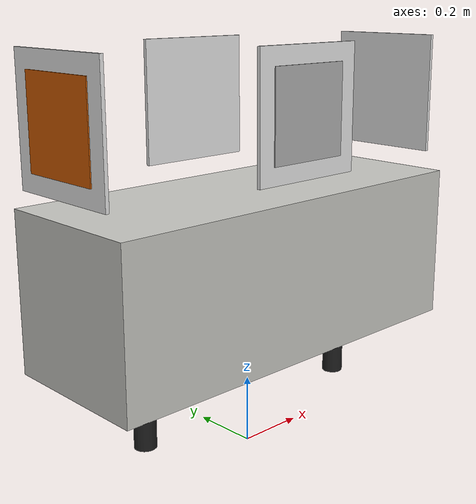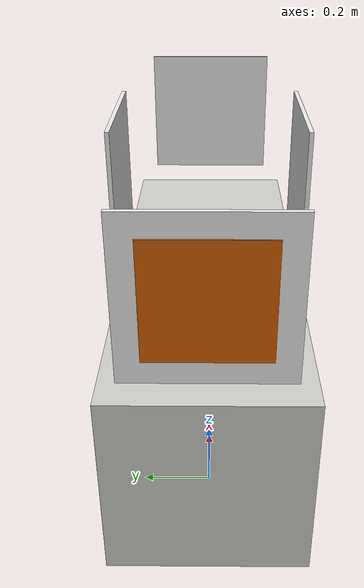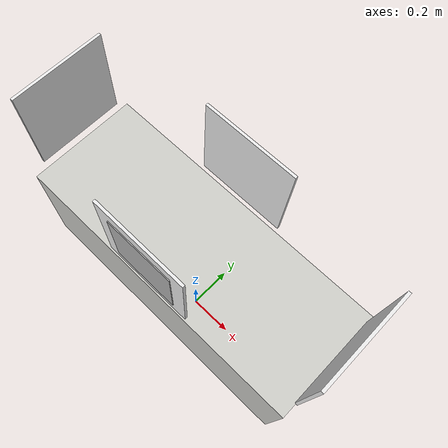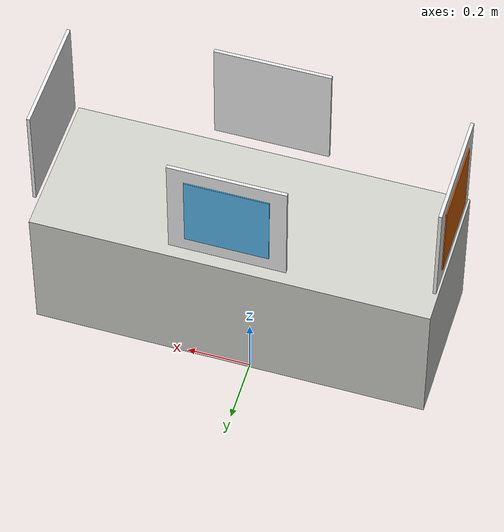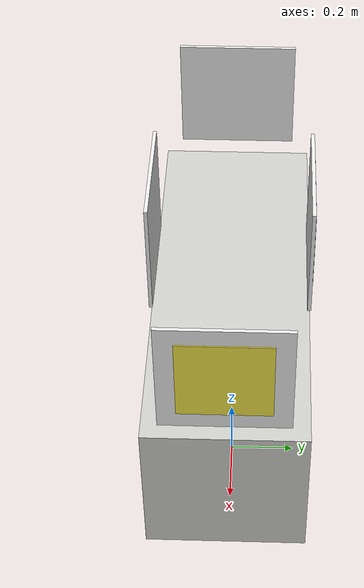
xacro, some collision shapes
<?xml version="1.0" ?>
<robot name="$(arg robotName)" xmlns:xacro="http://ros.org/wiki/xacro">

<!-- #### constants #### -->
<xacro:property name="deg_to_rad" value="0.017453"/>
<xacro:property name="PI" value="3.14"/>

<!-- #### body property #### -->
<xacro:property name="body_length" value="1.2"/>
<xacro:property name="body_width" value=".45"/>
<xacro:property name="body_height" value=".45"/>

<!-- ####  leg property #### -->
<xacro:property name="leg_radius" value="0.025"/>
<xacro:property name="leg_length" value="0.32"/>
<xacro:property name="leg_mass" value="2.5"/>

<!-- ####  rod property #### -->
<xacro:property name="rod_radius" value="0.031"/>
<xacro:property name="rod_length" value="0.3596"/>
<xacro:property name="rod_mass" value="1.0"/>

<!-- ####  Aruco property #### -->
<xacro:property name="aruco_width" value="0.25"/>
<xacro:property name="aruco_length" value="0.25"/>
<xacro:property name="aruco_height" value="0.01"/>
<xacro:property name="aruco_z" value="1."/>
<xacro:property name="aruco_mass" value="0.1"/>
<xacro:property name="edge_width" value="0.1"/>

<!-- begin           MACRO               begin -->

<xacro:macro name="cylinder_inertia" params ="m r h">
    <inertial>
        <mass value="${m}"/>
        <inertia ixx="${m*(3*r*r+h*h)/12}" ixy="0.0" ixz="0.0"
                 iyy="${m*(3*r*r+h*h)/12}" iyz= "0.0"
                 izz="${m*r*r/2}"/>
     </inertial>
 </xacro:macro>

<xacro:macro name="cuboid_inertia" params ="m w l h">
    <inertial>
        <mass value="${m}"/>
        <inertia ixx="${m*(w*w+h*h)/12}" ixy="0.0" ixz="0.0"
                 iyy="${m*(l*l+h*h)/12}" iyz= "0.0"
                 izz="${m*(w*w+l*l)/12}"/>
     </inertial>
 </xacro:macro>

<!-- #####  leg macro  ##### -->
<xacro:macro name="leg" params= "prefix suffix X1 Y1">

  <joint name="${prefix}_${suffix}_leg_joint" type="fixed">
    <parent link= "body"/>
    <child link= "${prefix}_${suffix}_leg"/>
    <origin xyz= "${(body_length/2)*X1} ${(body_width/2)*Y1}  ${leg_length/2}" rpy="0 0 0"/>
    <dynamics damping="0.0" friction="0.0"/>
  </joint>

  <link name= "${prefix}_${suffix}_leg">

    <collision>
      <origin rpy= "0 0 0" xyz= "0 0 0"/>
      <geometry>
        <cylinder length="${leg_length}" radius= "${leg_radius}"/>
      </geometry>
    </collision>
    <xacro:cylinder_inertia m="${leg_mass}" r="${leg_radius}" h="${leg_length}"/>
  </link>

  <gazebo reference ="${prefix}_${suffix}_leg">
    <mu1 value=".005"/>
    <mu2 value=".005"/>
    <kp value="10000000.0"/>
    <kd value= "10.0"/>
    <maxVel>0.</maxVel>
    <minDepth>0.001</minDepth>
  </gazebo>

</xacro:macro>

<xacro:macro name="ball_leg" params= "prefix suffix X1 Y1">

  <joint name="${prefix}_${suffix}_ball_leg_joint" type="fixed">
    <parent link= "body"/>
    <child link= "${prefix}_${suffix}_leg"/>
    <origin xyz= "${(body_length/2)*X1} ${(body_width/2)*Y1}  ${leg_radius}" rpy="0 0 0"/>
    <dynamics damping="0.0" friction="0.0"/>
  </joint>

  <link name= "${prefix}_${suffix}_leg">
    <collision>
      <origin rpy= "0 0 0" xyz= "0 0 0"/>
      <geometry>
        <sphere radius= "${leg_radius}"/>
      </geometry>
    </collision>
    <xacro:cylinder_inertia m="${leg_mass}" r="${leg_radius}" h="${leg_length}"/>
  </link>

  <gazebo reference ="${prefix}_${suffix}_ball_leg">
    <mu1 value=".0002"/>
    <mu2 value=".0002"/>
    <kp value="10000000.0"/>
    <kd value= "10.0"/>
    <maxVel>3</maxVel>
    <minDepth>0.001</minDepth>
  </gazebo>

</xacro:macro>

<!-- #####  Aruco macro  ##### -->
    <!-- Aruco facing four directions-->
<xacro:macro name="aruco" params= "prefix X1 Y1 Yaw aruco_id">
  <joint name="${prefix}_joint" type="fixed">
    <parent link= "body"/>
    <child link= "${prefix}_aruco"/>
    <origin xyz= "${(body_length/2)*X1} ${(body_width/2)*Y1} ${aruco_z}" rpy="${PI/2} 0 ${Yaw*PI/2}"/>
    <dynamics damping="0.0" friction="0.0"/>
  </joint>

  <link name= "${prefix}_aruco">
    <visual>
      <origin rpy= "0 0 0" xyz= "0 0 0"/>
      <geometry>
          <box size="${aruco_length} ${aruco_width} ${aruco_height}"/>
      </geometry>
    </visual>
    <collision>
      <origin rpy= "0 0 0" xyz= "0 0 0"/>
      <geometry>
          <box size="${aruco_length} ${aruco_width} ${aruco_height}"/>
      </geometry>
    </collision>
    <xacro:cuboid_inertia m="${aruco_mass}" w="${aruco_width}" l="${aruco_length}" h="${aruco_height}"/>

  </link>

  <gazebo reference="${prefix}_aruco">
      <material>SOLab/aruco${aruco_id}</material>
  </gazebo>

    <!-- Back Board for white edges -->
  <joint name="${prefix}_whiteboarder_joint" type="fixed">
    <parent link= "body"/>
    <child link= "${prefix}_aruco_whiteboarder"/>
    <origin xyz= "${(body_length/2-aruco_height*1/3)*X1} ${(body_width/2-aruco_height*1/3)*Y1} ${aruco_z}" rpy="${PI/2} 0 ${Yaw*PI/2}"/>
    <dynamics damping="0.0" friction="0.0"/>
  </joint>

  <link name= "${prefix}_aruco_whiteboarder">
    <visual>
      <origin rpy= "0 0 0" xyz= "0 0 0"/>
      <geometry>
          <box size="${aruco_length+edge_width} ${aruco_width+edge_width} ${aruco_height}"/>
      </geometry>
    </visual>
    <collision>
      <origin rpy= "0 0 0" xyz= "0 0 0"/>
      <geometry>
          <box size="${aruco_length+edge_width} ${aruco_width+edge_width} ${aruco_height}"/>
      </geometry>
    </collision>
    <xacro:cuboid_inertia m="${aruco_mass}" w="${aruco_width+edge_width}" l="${aruco_length+edge_width}" h="${aruco_height}"/>
  </link>
  <gazebo reference="${prefix}_aruco_whiteboarder">
      <material>SOLab/WhiteGlow</material>
  </gazebo>

</xacro:macro>

<!-- end           MACRO               end -->

  <!-- body-->
  <link name="body">
    <visual>
      <origin rpy="0 0 0" xyz="0 0 0"/>
      <geometry>
          <mesh filename="package://amr_description/meshes/shelft/only_shelft_XL.stl" scale="0.01 0.01 0.01"/>
      </geometry>
    </visual>

    <collision>
       <origin rpy="0 0 0" xyz="0 0 ${leg_length + body_height/2}"/>
       <geometry>
        <box size="${body_length} ${body_width} ${body_height}"/>
       </geometry>
     </collision>
     <inertial>
         <mass value="1.0"/>
              <inertia ixx="1.3542" ixy="0.0"
                       iyy="1.3542" iyz="0.0"
                       izz="1.3542" ixz="0.0"/>
    </inertial>
   </link>

  <gazebo reference="body">
      <material>Gazebo/CeilingTiled</material>
  </gazebo>

<!-- #### 4 legs #### -->
  <xacro:ball_leg prefix="right" suffix="front" X1="1" Y1="-1"/>
  <xacro:ball_leg prefix="right" suffix="back" X1="-1" Y1="-1"/>
  <xacro:ball_leg prefix="left" suffix="front" X1="1" Y1="1"/>
  <xacro:ball_leg prefix="left" suffix="back" X1="-1" Y1="1"/>

<!-- #### B bottom 1 #### -->
  <joint name="B_bot_1_joint" type="fixed">
    <parent link="body"/>
    <child link="B_bot_1" />
    <origin xyz="${body_length/2 - 0.22} 0 ${leg_length-0.025} " rpy="0 0 0"/>
  </joint>

  <link name="B_bot_1">
    <visual>
      <origin xyz="0.0 0 0.0" rpy="${PI} 0 ${PI/2}"/>
      <geometry>
        <cylinder length="${rod_length}" radius= "${rod_radius}"/>
      </geometry>
      <material name="light_black"/>
    </visual>

    <collision>
      <max_contacts>1</max_contacts>
      <origin xyz="0.0 0 0.0" rpy="${PI} 0 ${PI/2}"/>
      <geometry>
        <cylinder length="${rod_length}" radius= "${rod_radius}"/>
      </geometry>
    </collision>
    <xacro:cylinder_inertia m="${rod_mass}" r="${rod_radius}" h="${rod_length}"/>
  </link>

<!-- #### B bottom 2 #### -->
  <joint name="B_bot_2_joint" type="fixed">
    <parent link="body"/>
    <child link="B_bot_2" />
    <origin xyz="${-body_length/2 + 0.22} 0 ${leg_length -0.025} " rpy="0 0 0"/>
  </joint>

  <link name="B_bot_2">
    <visual>
      <origin xyz="0.0 0 0.0" rpy="${PI} 0 ${PI/2}"/>
      <geometry>
        <cylinder length="${rod_length}" radius= "${rod_radius}"/>
      </geometry>
      <material name="light_black"/>
    </visual>

    <collision>
      <max_contacts>1</max_contacts>
      <origin xyz="0.0 0 0.0" rpy="${PI} 0 ${PI/2}"/>
      <geometry>
        <cylinder length="${rod_length}" radius= "${rod_radius}"/>
      </geometry>
    </collision>
    <xacro:cylinder_inertia m="${rod_mass}" r="${rod_radius}" h="${rod_length}"/>
  </link>

  <!-- Aruco spawn -->
  <xacro:aruco prefix="east" X1="0" Y1="-1" Yaw="0" aruco_id="203"/>
  <xacro:aruco prefix="west" X1="0" Y1="1" Yaw="0"  aruco_id="201"/>
  <xacro:aruco prefix="north" X1="1" Y1="0" Yaw="1" aruco_id="200"/>
  <xacro:aruco prefix="south" X1="-1" Y1="0" Yaw="1" aruco_id="202"/>

  <gazebo reference="B_bot_1">
      <mu1>10</mu1>
      <mu2>10</mu2>
      <kp>1000000</kp>
      <kd>10</kd>
      <maxVel>0.</maxVel>
      <minDepth>0.001</minDepth>
      <material>Gazebo/Wood</material>
  </gazebo>

  <gazebo reference="B_bot_2">
      <mu1>10</mu1>
      <mu2>10</mu2>
      <kp>1000000</kp>
      <kd>10</kd>
      <maxVel>0.</maxVel>
      <minDepth>0.001</minDepth>
      <material>Gazebo/Wood</material>
  </gazebo>

</robot>
